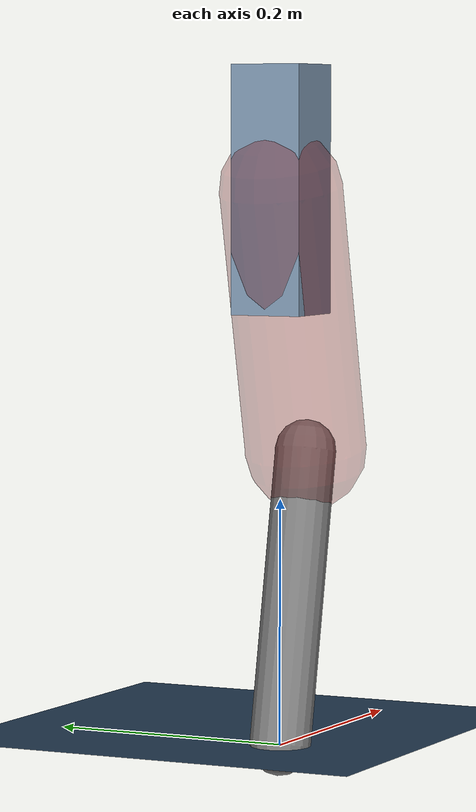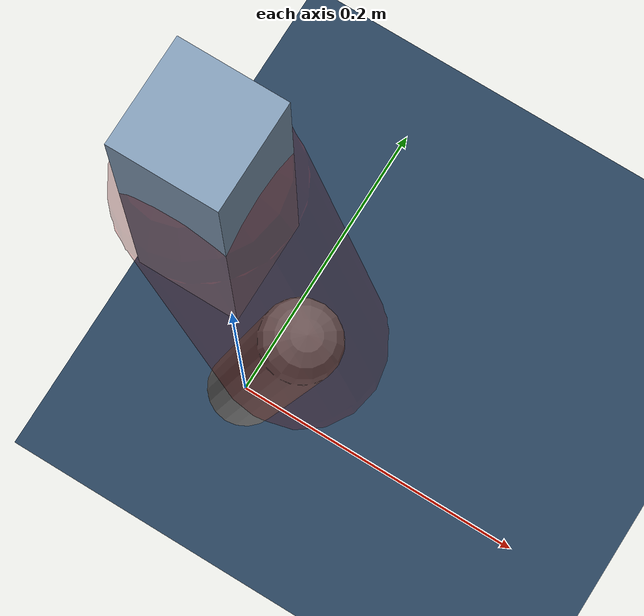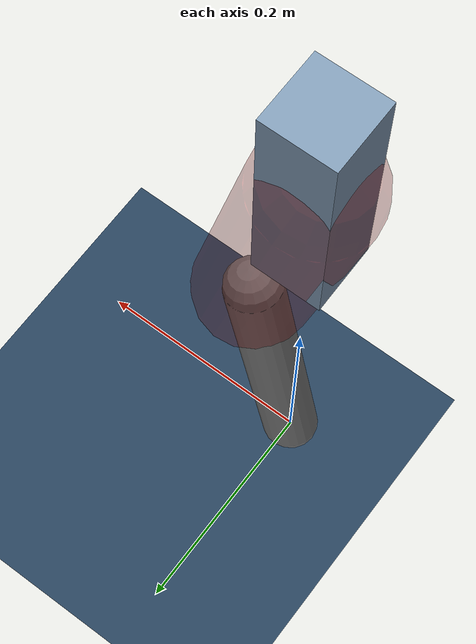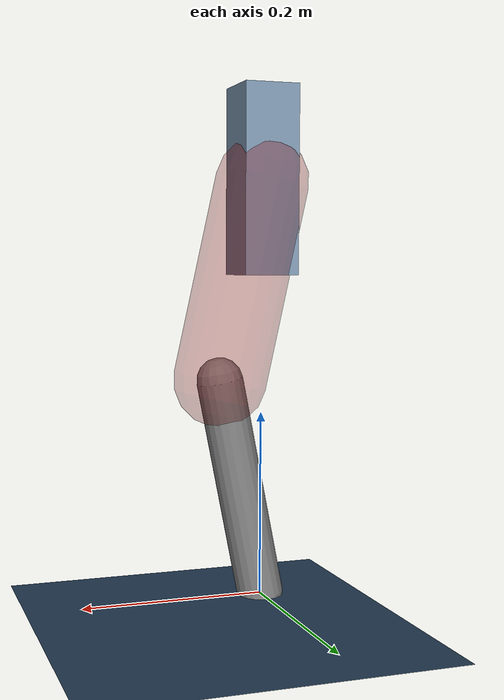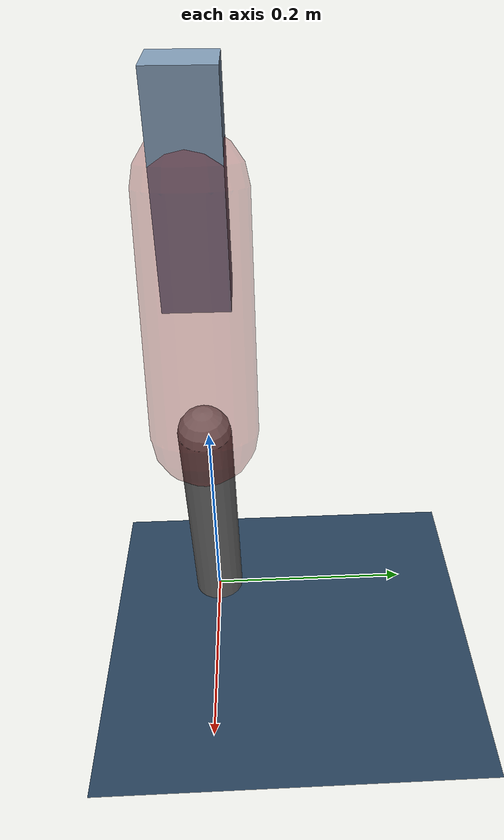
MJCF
<mujoco model="Hopper2D">
	<compiler inertiafromgeom="true" angle="radian" />
	<option timestep="0.001" integrator="implicit" cone="elliptic" solver="Newton" tolerance="1e-10" />

	<default>
		<geom contype="1" conaffinity="1" condim="3" friction="2 0.005 0.0001" solref="0.005 1" />
		<joint limited="true" damping="0.1" />
	</default>

	<asset>
		<texture name="skybox" type="skybox" builtin="gradient" rgb1=".4 .6 .8" rgb2="0 0 0" width="800" height="800" />
		<texture name="grid" type="2d" builtin="checker" rgb1=".1 .2 .3" rgb2=".2 .3 .4" width="300" height="300" mark="edge" markrgb=".2 .3 .4" />
		<material name="ground" texture="grid" texrepeat="1 1" texuniform="true" reflectance="0.1" />
		<material name="leg" rgba="0.5 0.6 0.7 1" />
	</asset>

	<worldbody>

		<geom name="floor" type="plane" size="5 5 0.25" material="ground" />

		<light directional="false" diffuse="0.8 0.8 0.8" specular="0.3 0.3 0.3" pos="0 0 2" dir="0 0 -1" />
		<light mode="targetbodycom" target="base" directional="false" diffuse="0.8 0.8 0.8" specular="0.3 0.3 0.3" pos="0 0 2" dir="0 0 -1" />

		<camera name="fixed" pos="0 -2 1" xyaxes="1 0 0 0 0 1" />
		<camera name="tracking" mode="trackcom" pos="0 -3 1" />

		<body name="root" pos="0 0 0.4496000735667161">
			<joint name="slide_x" type="slide" axis="1 0 0" range="-100 100" />
			<joint name="slide_z" type="slide" axis="0 0 1" range="0 10" />

			<body name="base" pos="0 0 0">
				<geom name="torso" type="box" size="0.03 0.03 0.1" mass="3.655" material="leg" />

				<body name="link1" pos="0 0 0" euler="0 1.3508612355148404 0">
					<joint type="hinge" axis="0 -1 0" pos="0 0 0" name="hinge1" limited="true" range="-3.14 3.14" stiffness="0" damping="0.1" />
					<geom name="thigh" type="capsule" fromto="0 0 0 0.2182414780332108 0 0" size="0.05" rgba="0.5 0 0 0.3" mass="0.775203695083027" />

					<body name="link2" pos="0.2182414780332108 0 0" euler="0 0.4185080167739073 0">
						<joint type="hinge" axis="0 -1 0" pos="0 0 0" name="hinge2" limited="true" range="-3.14 3.14" stiffness="0" damping="0.1" />
						<geom name="shank" type="capsule" fromto="0 0 0 0.2413585955335053 0 0" size="0.025" mass="0.43538687642680424" />

					</body>
				</body>
			</body>
		</body>
	</worldbody>

	<actuator>
		<motor name="torque1" joint="hinge1" ctrlrange="-134.44904896301802 134.44904896301802" ctrllimited="true" gear="1" />
		<motor name="torque2" joint="hinge2" ctrlrange="-129.34831971808592 129.34831971808592" ctrllimited="true" gear="1" />
	</actuator>
</mujoco>
